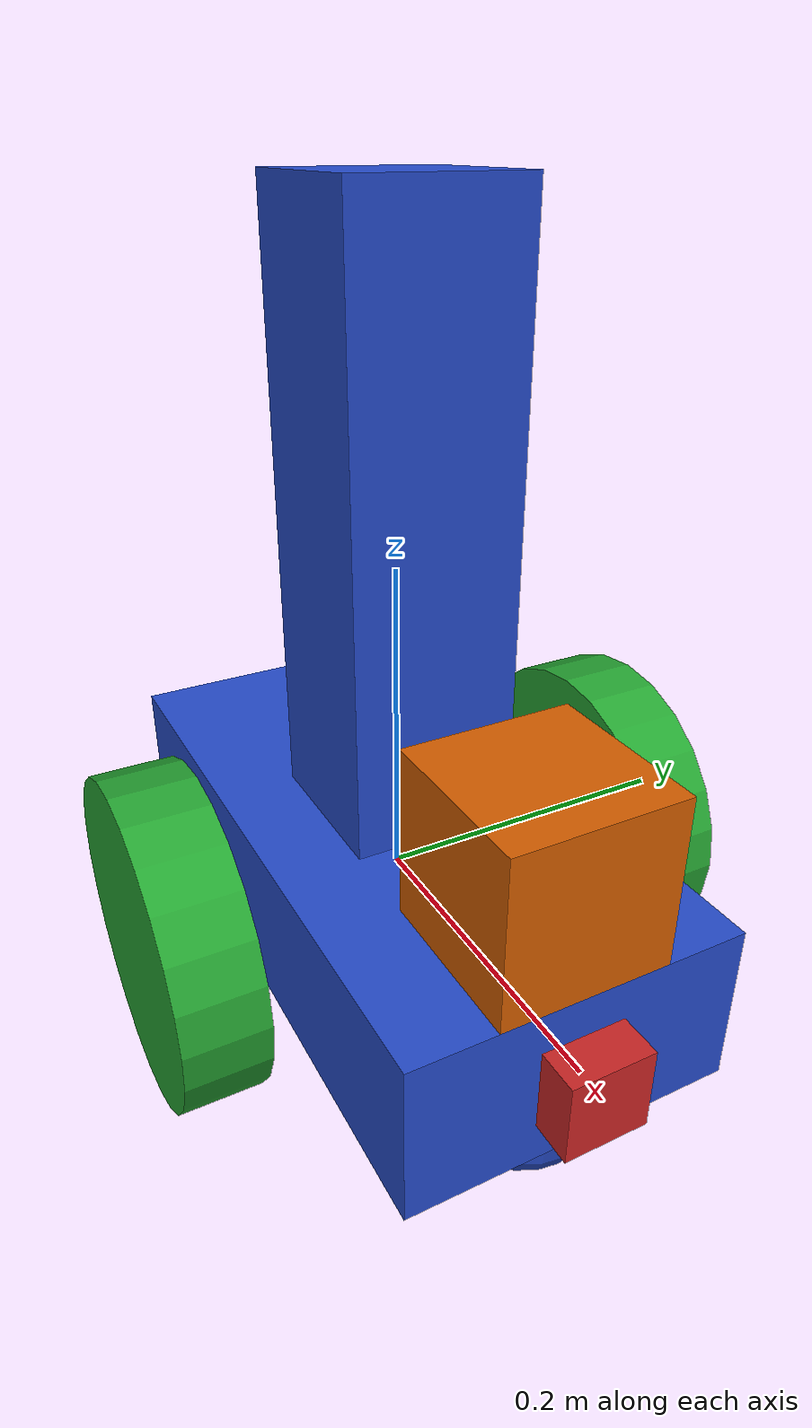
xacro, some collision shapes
<?xml version='1.0'?>

<robot name="my_robot" xmlns:xacro="http://www.ros.org/wiki/xacro">

  <xacro:include filename="$(find my_robot)/urdf/my_robot.gazebo" />

  <link name="robot_footprint"></link>

  <joint name="robot_footprint_joint" type="fixed">
    <origin xyz="0 0 0" rpy="0 0 0" />
    <parent link="robot_footprint"/>
    <child link="chassis" />
  </joint>

  <link name='chassis'>
    <pose>0 0 0.1 0 0 0</pose>

    <inertial>
      <mass value="15.0"/>
      <origin xyz="0.0 0 0" rpy=" 0 0 0"/>
      <inertia
          ixx="0.1" ixy="0" ixz="0"
          iyy="0.1" iyz="0"
          izz="0.1"
      />
    </inertial>

    <collision name='chassis_collision'>
      <origin xyz="0 0 0" rpy=" 0 0 0"/>
      <geometry>
        <box size=".4 .2 .1"/>
      </geometry>
    </collision>

    <visual name='chassis_visual'>
      <origin xyz="0 0 0" rpy=" 0 0 0"/>
      <geometry>
        <box size=".4 .2 .1"/>
      </geometry>
    </visual>

    <collision name='back_caster_collision'>
      <origin xyz="-0.15 0 -0.05" rpy=" 0 0 0"/>
      <geometry>
        <sphere radius="0.0499"/>
      </geometry>
    </collision>

    <visual name='back_caster_visual'>
      <origin xyz="-0.15 0 -0.05" rpy=" 0 0 0"/>
      <geometry>
        <sphere radius="0.05"/>
      </geometry>
    </visual>

    <collision name='front_caster_collision'>
      <origin xyz="0.15 0 -0.05" rpy=" 0 0 0"/>
      <geometry>
        <sphere radius="0.05"/>
      </geometry>
    </collision>

    <visual name='front_caster_visual'>
      <origin xyz="0.15 0 -0.05" rpy=" 0 0 0"/>
      <geometry>
        <sphere radius="0.05"/>
      </geometry>
    </visual>

    <collision name='horn_collision'>
      <origin xyz="0.0 0 0.2" rpy=" 0 0 0"/>
      <geometry>
        <box size=".1 .1 .4"/>
      </geometry>
    </collision>

    <visual name='horn_visual'>
      <origin xyz="0.0 0 0.2" rpy=" 0 0 0"/>
      <geometry>
        <box size=".1 .1 .4"/>
      </geometry>
    </visual>

 </link>

 <link name='right_wheel'>
    <pose>0 0 0 0 0 0</pose>

    <inertial>
      <mass value="5.0"/>
      <origin xyz="0 0 0" rpy="0 1.5707 1.5707"/>
      <inertia
          ixx="0.1" ixy="0" ixz="0"
          iyy="0.1" iyz="0"
          izz="0.1"
      />
    </inertial>

    <collision name='collision'>
      <origin xyz="0 0 0" rpy="0 1.5707 1.5707"/>
      <geometry>
        <cylinder length="0.05" radius="0.1"/>
      </geometry>
    </collision>

    <visual name='right_wheel_visual'>
      <origin xyz="0 0 0" rpy="0 1.5707 1.5707"/>
      <geometry>
        <cylinder length="0.05" radius="0.1"/>
      </geometry>
    </visual>
  </link>

  <link name='left_wheel'>
    <pose>0 0 0 0 0 0</pose>

    <inertial>
      <mass value="5.0"/>
      <origin xyz="0 0 0" rpy="0 1.5707 1.5707"/>
      <inertia
          ixx="0.1" ixy="0" ixz="0"
          iyy="0.1" iyz="0"
          izz="0.1"
      />
    </inertial>

    <collision name='collision'>
      <origin xyz="0 0 0" rpy="0 1.5707 1.5707"/>
      <geometry>
        <cylinder length="0.05" radius="0.1"/>
      </geometry>
    </collision>

    <visual name='left_wheel_visual'>
      <origin xyz="0 0 0" rpy="0 1.5707 1.5707"/>
      <geometry>
        <cylinder length="0.05" radius="0.1"/>
      </geometry>
    </visual>
  </link>

  <joint type="continuous" name="left_wheel_hinge">
    <origin xyz="0 0.15 0" rpy="0 0 0"/>
    <child link="left_wheel"/>
    <parent link="chassis"/>
    <axis xyz="0 1 0" rpy="0 0 0"/>
    <limit effort="10000" velocity="1000"/>
    <dynamics damping="1.0" friction="1.0"/>
  </joint>

  <joint type="continuous" name="right_wheel_hinge">
    <origin xyz="0 -0.15 0" rpy="0 0 0"/>
    <child link="right_wheel"/>
    <parent link="chassis"/>
    <axis xyz="0 1 0" rpy="0 0 0"/>
    <limit effort="10000" velocity="1000"/>
    <dynamics damping="1.0" friction="1.0"/>
  </joint>

  <link name="camera">
   <pose>0 0 0 0 0 0</pose>

    <inertial>
      <mass value="0.1"/>
      <origin xyz="0 0 0" rpy="0 0 0"/>
      <inertia
          ixx="1e-6" ixy="0" ixz="0"
          iyy="1e-6" iyz="0"
          izz="1e-6"
      />
    </inertial>

    <collision name='collision'>
      <origin xyz="0 0 0" rpy="0 0 0"/>
      <geometry>
        <box size="0.05 0.05 0.05"/>
      </geometry>
    </collision>

    <visual name='camera_visual'>
      <origin xyz="0 0 0" rpy="0 0 0"/>
      <geometry>
        <box size="0.05 0.05 0.05"/>
      </geometry>
    </visual>

  </link>

  <joint name="camera_joint" type="fixed">
    <origin xyz="0.2 0 0" rpy="0 0 0" />
    <axis xyz="0 1 0" rpy="0 0 0"/>
    <parent link="chassis"/>
    <child link="camera" />
  </joint>

  <link name="hokuyo">
   <pose>0 0 0 0 0 0</pose>

    <inertial>
      <mass value="1e-5"/>
      <origin xyz="0 0 0" rpy="0 0 0"/>
      <inertia
          ixx="1e-6" ixy="0" ixz="0"
          iyy="1e-6" iyz="0"
          izz="1e-6"
      />
    </inertial>

    <collision name='collision'>
      <origin xyz="0 0 0" rpy="0 0 0"/>
      <geometry>
        <box size="0.1 0.1 0.1"/>
      </geometry>
    </collision>

    <visual name='hoyuko_visual'>
      <origin xyz="0 0 0" rpy="0 0 0"/>
      <geometry>
        <mesh filename= "package://my_robot/meshes/hokuyo.dae"/>
      </geometry>
    </visual>

  </link>

  <joint name="hokuyo_joint" type="fixed">
    <origin xyz="0.15 0 0.1" rpy="0 0 0" />
    <axis xyz="0 1 0" rpy="0 0 0"/>
    <parent link="chassis"/>
    <child link="hokuyo" />
  </joint>

  <gazebo reference="chassis">
   <material>Gazebo/Blue</material>
  </gazebo>

  <gazebo reference="camera">
   <material>Gazebo/Red</material>
  </gazebo>

  <gazebo reference="left_wheel">
   <material>Gazebo/Green</material>
  </gazebo>

  <gazebo reference="right_wheel">
   <material>Gazebo/Green</material>
  </gazebo>

</robot>
